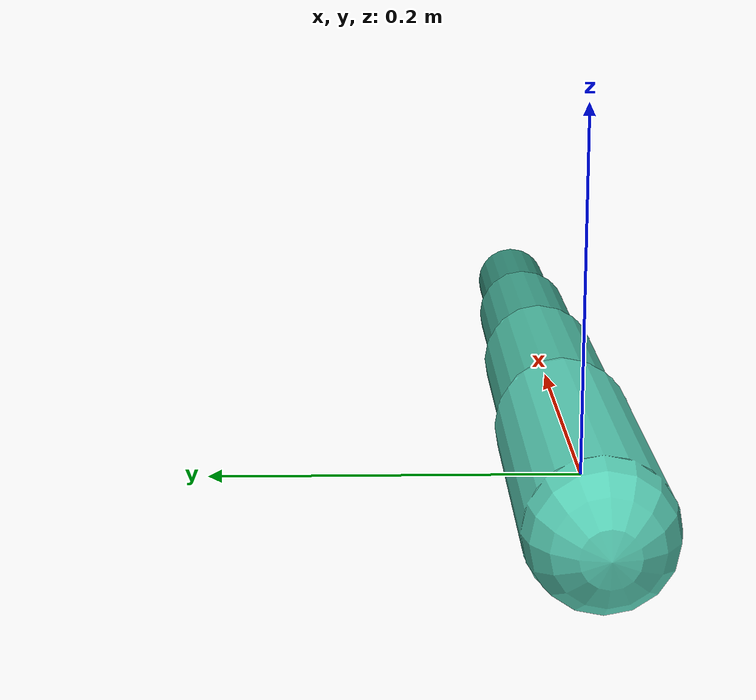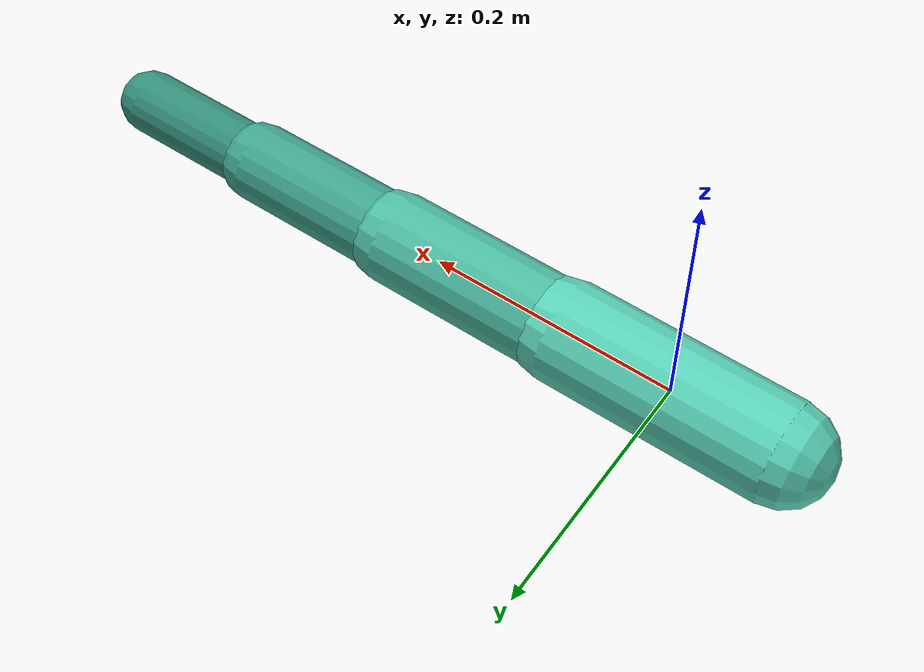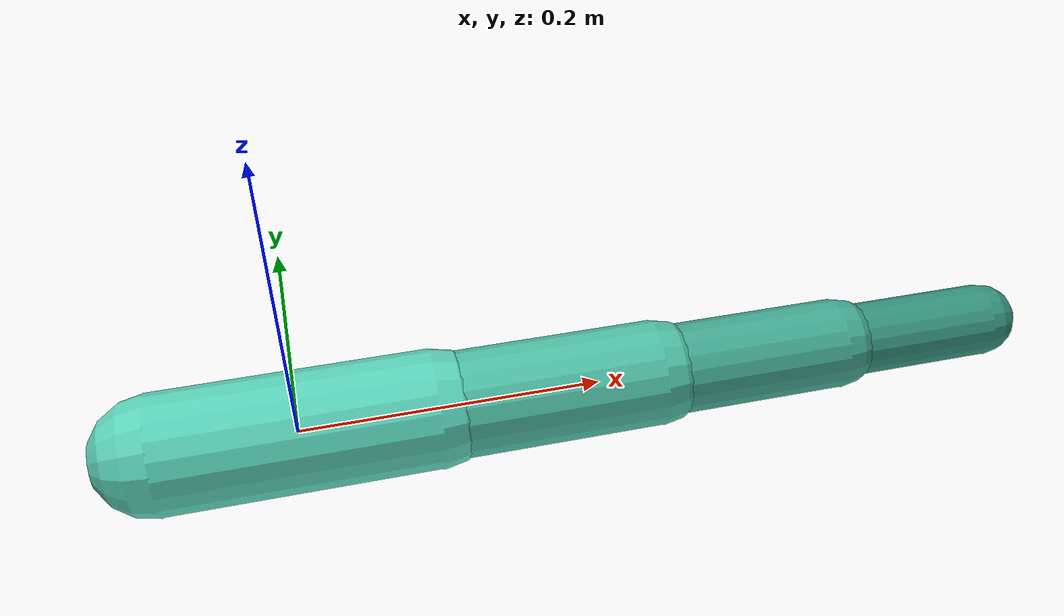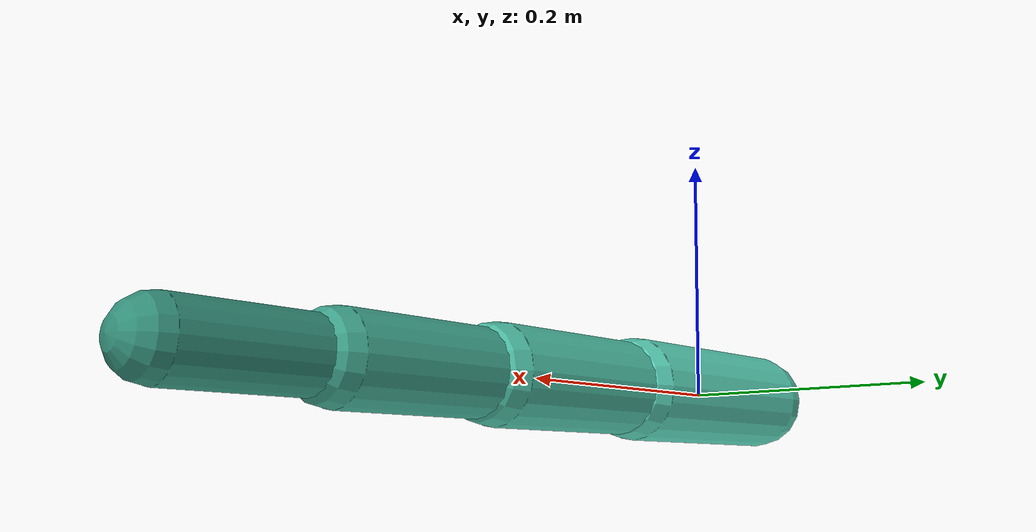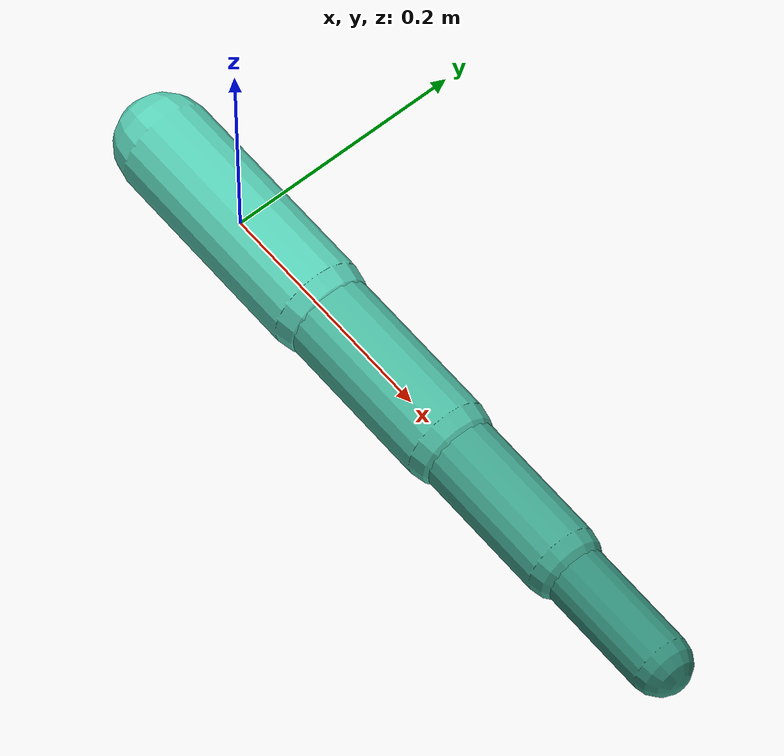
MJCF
<mujoco model="worm">
  <option density="4000" viscosity="0.1" timestep="0.002"/>

  <default>
    <geom contype="0" conaffinity="0" density="1000"/>
    <joint armature="0.02"/>
  </default>

  <worldbody>
    <!-- Segment 0: head, symmetric capsule centred at root -->
    <body name="seg0" pos="0 0 0">
      <joint name="slider_x" type="slide" axis="1 0 0"/>
      <joint name="slider_y" type="slide" axis="0 1 0"/>
      <joint name="root_rot" type="hinge" axis="0 0 1"/>
      <geom name="g0" type="capsule" fromto="-0.09 0 0 0.09 0 0" size="0.040"
            rgba="0.35 0.82 0.72 1"/>

      <!-- j0 pivot at right end of seg0 -->
      <body name="seg1" pos="0.09 0 0">
        <joint name="j0" type="hinge" axis="0 0 1" range="-75 75" damping="0.08"/>
        <geom name="g1" type="capsule" fromto="0 0 0 0.15 0 0" size="0.036"
              rgba="0.30 0.74 0.64 1"/>

        <!-- j1 pivot at right end of seg1 -->
        <body name="seg2" pos="0.15 0 0">
          <joint name="j1" type="hinge" axis="0 0 1" range="-75 75" damping="0.08"/>
          <geom name="g2" type="capsule" fromto="0 0 0 0.13 0 0" size="0.031"
                rgba="0.25 0.65 0.56 1"/>

          <!-- j2 pivot at right end of seg2 -->
          <body name="seg3" pos="0.13 0 0">
            <joint name="j2" type="hinge" axis="0 0 1" range="-75 75" damping="0.06"/>
            <geom name="g3" type="capsule" fromto="0 0 0 0.11 0 0" size="0.025"
                  rgba="0.20 0.56 0.48 1"/>
          </body>
        </body>
      </body>
    </body>
  </worldbody>

  <!-- gear="1" → act[i] directly equals torque in N·m -->
  <actuator>
    <motor name="m0" joint="j0" gear="1"/>
    <motor name="m1" joint="j1" gear="1"/>
    <motor name="m2" joint="j2" gear="1"/>
  </actuator>
</mujoco>
